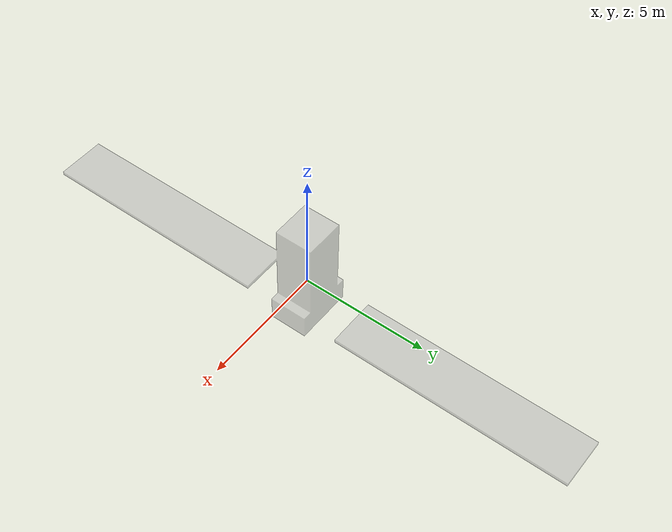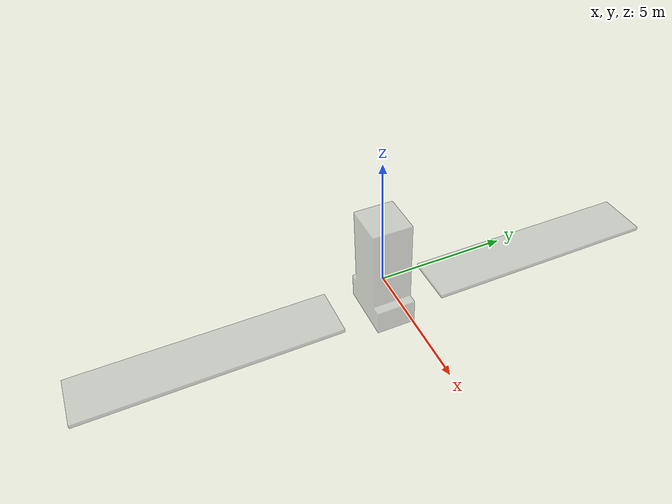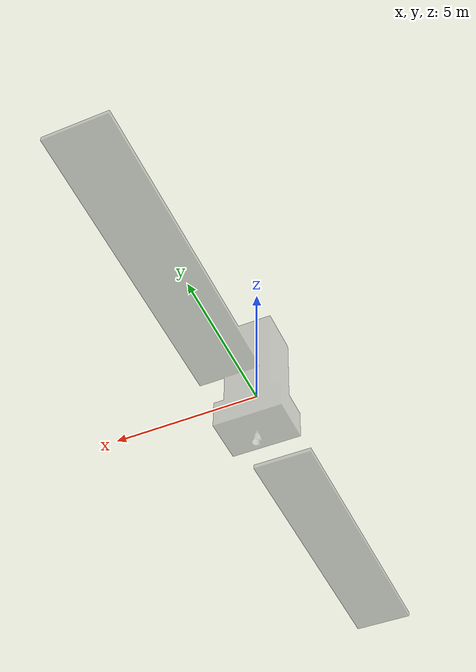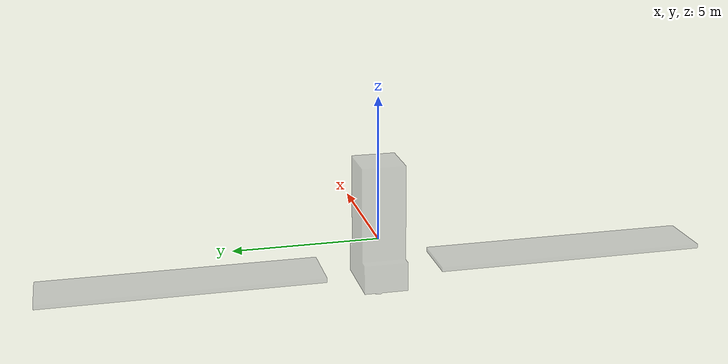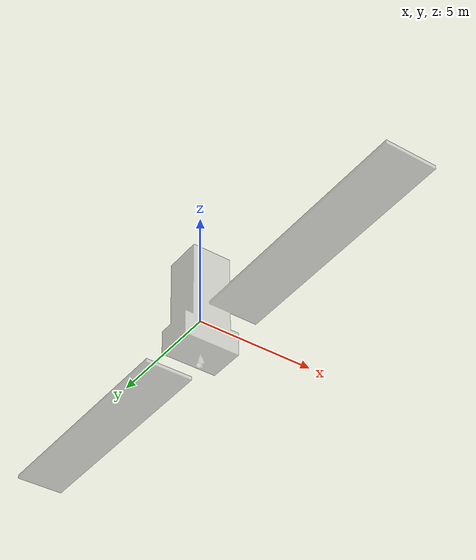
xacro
<?xml version="1.0" ?>
<robot xmlns:xacro="http://wiki.ros.org/xacro" name="FREND">
  <xacro:arg name="prefix" default=""/>
  <xacro:include filename="./sim_tube_geom.xacro"/>
  <xacro:include filename="./sim_nozzle_geom.xacro"/>
  <xacro:property name="mass_scale" value="1" />
  <xacro:property name="rval" value="0.7"/>
  <xacro:property name="gval" value="0.7"/>
  <xacro:property name="bval" value="0.7"/>

  <link name="$(arg prefix)client">
    <visual>
      <origin rpy="0 0 0" xyz="0 0 0"/>
      <geometry>
        <mesh filename="package://on_orbit/urdf/meshes/full_cv.stl" scale="1 1 1"/>
      </geometry>
      <material name="transparent_gray">
        <color rgba="${rval} ${gval} ${bval} 0.5"/>
      </material>
    </visual>
    <collision>
    <origin rpy="0 0 0" xyz="0 0 0"/>
      <geometry>
        <mesh filename="package://on_orbit/urdf/meshes/full_cv.stl" scale="1 1 1"/>
      </geometry>
    </collision>
    <inertial>
      <mass value="${1050*mass_scale}"/>
      <origin rpy="0 0 0" xyz="0 0 0"/>
      <inertia ixx="${1792.419738*mass_scale}" ixy="0" ixz="0"
               iyy="${2015.632675*mass_scale}" iyz="0" izz="${630.7312375*mass_scale}"/>
    </inertial>
  </link>

  <joint name="$(arg prefix)client_to_nozzle" type="fixed">
    <parent link="$(arg prefix)client"/>
    <child link="$(arg prefix)nozzle"/>
    <origin rpy="0 0 0" xyz="0 0 -1.9897"/>
  </joint>

  <link name="$(arg prefix)nozzle">
    <inertial>
      <mass value="0"/>
      <origin rpy="0 0 0" xyz="0 0 0"/>
      <inertia ixx="0" ixy="0" ixz="0"
               iyy="0" iyz="0" izz="0"/>
    </inertial>
  </link>

  <joint name="$(arg prefix)nozzle_to_capture_box" type="fixed">
    <parent link="$(arg prefix)nozzle"/>
    <child link="$(arg prefix)capture_box"/>
    <origin rpy="0 0 0" xyz="0 0 -0.07"/>
  </joint>

  <link name="$(arg prefix)capture_box">
    <inertial>
      <mass value="0"/>
      <origin rpy="0 0 0" xyz="0 0 0"/>
      <inertia ixx="0" ixy="0" ixz="0"
               iyy="0" iyz="0" izz="0"/>
    </inertial>
  </link>

  <link name="$(arg prefix)cone_vertex">
    <inertial>
      <mass value="0"/>
      <origin rpy="0 0 0" xyz="0 0 0"/>
      <inertia ixx="0" ixy="0" ixz="0"
               iyy="0" iyz="0" izz="0"/>
    </inertial>
  </link>

  <joint name="$(arg prefix)nozzle_to_cone_vertex" type="fixed">
    <parent link="$(arg prefix)nozzle"/>
    <child link="$(arg prefix)cone_vertex"/>
    <origin rpy="0 0 0" xyz="0 0 0.51"/>
  </joint>

  <link name="$(arg prefix)hole">
    <inertial>
      <mass value="0"/>
      <origin rpy="0 0 0" xyz="0 0 0"/>
      <inertia ixx="0" ixy="0" ixz="0"
               iyy="0" iyz="0" izz="0"/>
    </inertial>
  </link>

  <joint name="$(arg prefix)nozzle_to_hole" type="fixed">
    <parent link="$(arg prefix)nozzle"/>
    <child link="$(arg prefix)hole"/>
    <origin rpy="0 0 0" xyz="0 0 0.429"/>
  </joint>

  <link name="$(arg prefix)goal">
    <inertial>
      <mass value="0"/>
      <origin rpy="0 0 0" xyz="0 0 0"/>
      <inertia ixx="0" ixy="0" ixz="0"
               iyy="0" iyz="0" izz="0"/>
    </inertial>
  </link>

  <joint name="$(arg prefix)nozzle_to_goal" type="fixed">
    <parent link="$(arg prefix)nozzle"/>
    <child link="$(arg prefix)goal"/>
    <origin rpy="0 0 0" xyz="0 0 0.4585"/>
  </joint>

  <link name="$(arg prefix)hole_end">
      <inertial>
      <mass value="0"/>
      <origin rpy="0 0 0" xyz="0 0 0"/>
      <inertia ixx="0" ixy="0" ixz="0"
               iyy="0" iyz="0" izz="0"/>
    </inertial>
        <collision>
        <origin rpy="0 0 0" xyz="0 0 0.5"/>
        <geometry>
          <box size="1 1 1"/>
        </geometry>
      </collision>
  </link>

  <joint name="$(arg prefix)nozzle_to_hole_end" type="fixed">
    <parent link="$(arg prefix)nozzle"/>
    <child link="$(arg prefix)hole_end"/>
    <origin rpy="0 0 0" xyz="0 0 0.4785"/>
  </joint>

  <xacro:tube_geom num="0" theta="0" prefix="$(arg prefix)"/>
  <xacro:tube_geom num="1" theta="${pi/4}" prefix="$(arg prefix)"/>
  <xacro:tube_geom num="2" theta="${pi/2}" prefix="$(arg prefix)"/>
  <xacro:tube_geom num="3" theta="${3*pi/4}" prefix="$(arg prefix)"/>
  <xacro:tube_geom num="4" theta="${pi}" prefix="$(arg prefix)"/>
  <xacro:tube_geom num="5" theta="${5*pi/4}" prefix="$(arg prefix)"/>
  <xacro:tube_geom num="6" theta="${3*pi/2}" prefix="$(arg prefix)"/>
  <xacro:tube_geom num="7" theta="${7*pi/4}" prefix="$(arg prefix)"/>

  <xacro:nozzle_geom num="0" theta="0" prefix="$(arg prefix)"/>
  <xacro:nozzle_geom num="1" theta="${pi/4}" prefix="$(arg prefix)"/>
  <xacro:nozzle_geom num="2" theta="${pi/2}" prefix="$(arg prefix)"/>
  <xacro:nozzle_geom num="3" theta="${3*pi/4}" prefix="$(arg prefix)"/>
  <xacro:nozzle_geom num="4" theta="${pi}" prefix="$(arg prefix)"/>
  <xacro:nozzle_geom num="5" theta="${5*pi/4}" prefix="$(arg prefix)"/>
  <xacro:nozzle_geom num="6" theta="${3*pi/2}" prefix="$(arg prefix)"/>
  <xacro:nozzle_geom num="7" theta="${7*pi/4}" prefix="$(arg prefix)"/>
</robot>

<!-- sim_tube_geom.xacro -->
<robot xmlns:xacro="http://www.ros.org/wiki/xacro">
  <xacro:include filename="./sim_nozzle_geom.xacro"/>
  <xacro:property name="tube_length" value="0.0445" />
  <xacro:property name="tube_wall_width" value="0.0066" />
  <xacro:property name="tube_box_width" value="0.02" />
  <xacro:property name="tube_outer_diameter" value="0.032" />
  <xacro:property name="tube_middle_diameter" value="${tube_outer_diameter - tube_wall_width}" />
  <xacro:macro name="tube_geom" params="num theta prefix">
    <link name="${prefix}tube_geom${num}">
      <inertial>
        <mass value="0"/>
        <origin rpy="0 0 0" xyz="0 0 0"/>
        <inertia ixx="0" ixy="0" ixz="0" iyy="0" iyz="0" izz="0"/>
      </inertial>
      <collision>
        <origin rpy="0 0 0" xyz="0 0 0"/>
        <geometry>
          <box size="${tube_wall_width} ${tube_box_width} ${tube_length}"/>
        </geometry>
      </collision>
    </link>
    <joint name="${prefix}nozzle_to_tube_geom${num}" type="fixed">
      <parent link="${prefix}nozzle"/>
      <child link="${prefix}tube_geom${num}"/>
      <origin rpy="0 0 ${theta}" xyz="${tube_middle_diameter/2*cos(theta)} ${tube_middle_diameter/2*sin(theta)} ${tube_length/2 + nozzle_length}"/>
    </joint>
  </xacro:macro>
</robot>

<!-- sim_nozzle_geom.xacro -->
<robot xmlns:xacro="http://www.ros.org/wiki/xacro">
  <xacro:property name="nozzle_length" value="0.429" />
  <xacro:property name="nozzle_geom_length" value="0.44712" />
  <xacro:property name="nozzle_wall_width" value="0.005" />
  <xacro:property name="nozzle_box_width" value="0.125" />
  <xacro:property name="throat_outer_diameter" value="0.032" />
  <xacro:property name="throat_middle_diameter" value="${throat_outer_diameter - nozzle_wall_width}" />
  <xacro:property name="entry_outer_diameter" value="0.284" />
  <xacro:property name="entry_middle_diameter" value="${entry_outer_diameter - nozzle_wall_width}" />
  <xacro:property name="entry_inner_rad" value="${(entry_outer_diameter - 2*nozzle_wall_width)/2}" />
  <xacro:property name="dist_from_centerline" value="${(throat_middle_diameter + entry_middle_diameter)/4}" />
  <xacro:property name="slope_angle" value="0.285672797" />
  <xacro:macro name="nozzle_geom" params="num theta prefix">
    <link name="${prefix}nozzle_geom${num}">

      <inertial>
        <mass value="0"/>
        <origin rpy="0 0 0" xyz="0 0 0"/>
        <inertia ixx="0" ixy="0" ixz="0" iyy="0" iyz="0" izz="0"/>
      </inertial>
      <collision>
        <origin rpy="0 0 0" xyz="0 0 0"/>
        <geometry>
          <box size="${nozzle_wall_width} ${nozzle_box_width} ${nozzle_geom_length}"/>
        </geometry>
      </collision>
    </link>
    <joint name="${prefix}nozzle_to_nozzle_geom${num}" type="fixed">
      <parent link="${prefix}nozzle"/>
      <child link="${prefix}nozzle_geom${num}"/>
      <origin rpy="0 ${-slope_angle} ${theta}" xyz="${dist_from_centerline*cos(theta)} ${dist_from_centerline*sin(theta)} ${nozzle_geom_length/2*cos(slope_angle) + nozzle_wall_width*sin(slope_angle)}"/>
    </joint>

    <link name="${prefix}nozzle_rim${num}">
      <inertial>
        <mass value="0"/>
        <origin rpy="0 0 0" xyz="0 0 0"/>
        <inertia ixx="0" ixy="0" ixz="0" iyy="0" iyz="0" izz="0"/>
      </inertial>
    </link>
    <joint name="${prefix}nozzle_to_nozzle_rim${num}" type="fixed">
      <parent link="${prefix}nozzle"/>
      <child link="${prefix}nozzle_rim${num}"/>
      <origin rpy="0 ${-slope_angle} ${theta}" xyz="${entry_inner_rad*cos(theta)} ${entry_inner_rad*sin(theta)} 0"/>
    </joint>
  </xacro:macro>
</robot>
